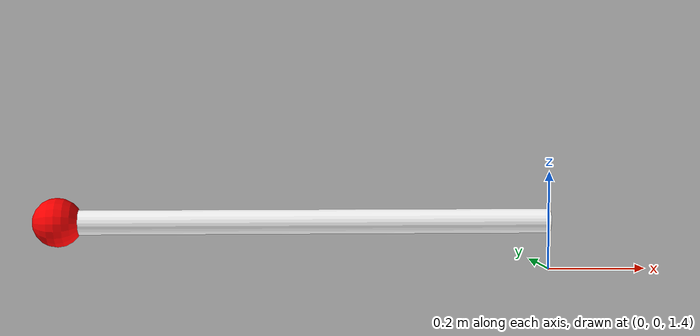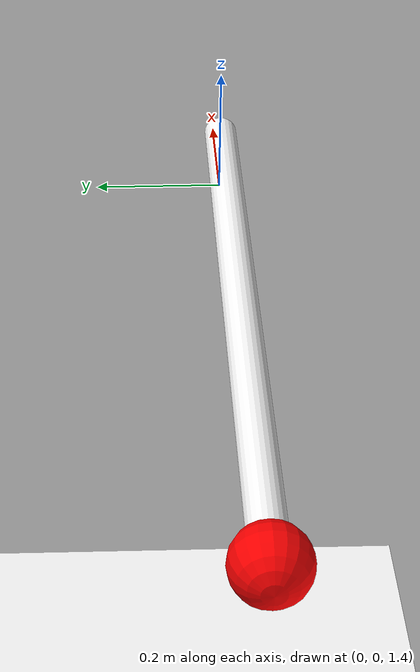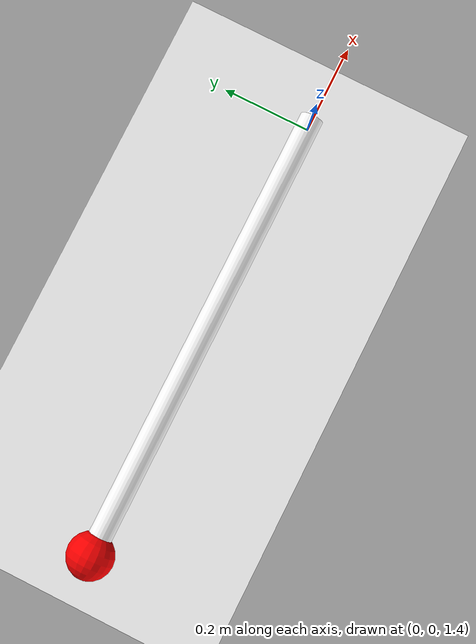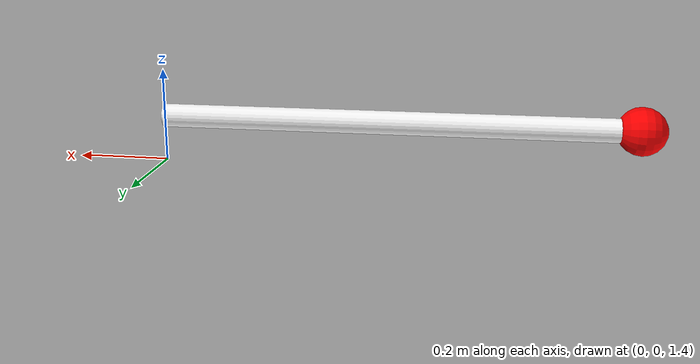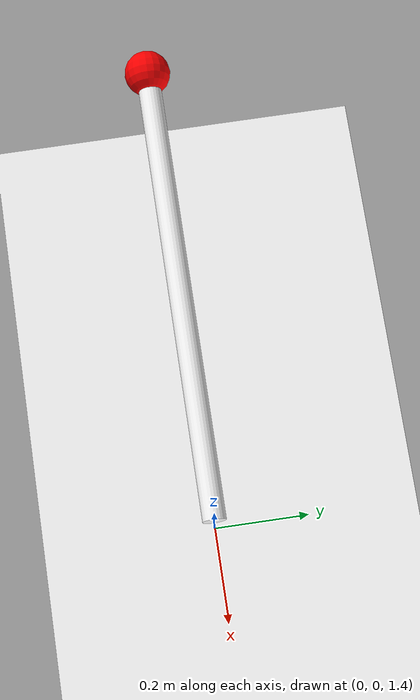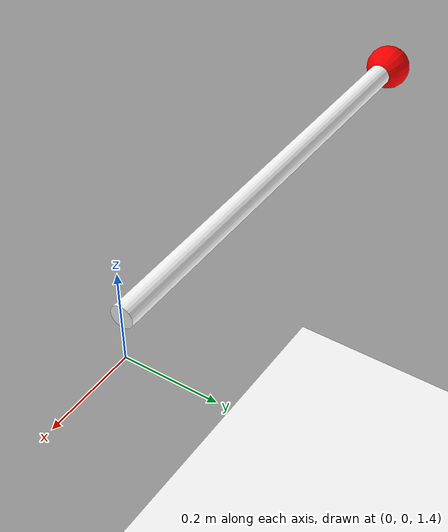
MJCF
<mujoco>
    <option gravity = "0 0 -9.81">
        <flag contact="enable" />
    </option >
    <worldbody>
        <light diffuse="0 0 0" pos="0 0 10" dir="0 0 -1" />
        <geom type="plane" size="2 2 0.01" rgba="1 1 1 1" />
        <body pos="-0.5 0 1.5" euler="0 90 0">
            <joint name="joint0" type="hinge" axis = "0 1 0" pos = "0 0 0.5" />
            <geom type="cylinder" size="0.025 0.5" euler="0 0 0" mass = "1" rgba="1 1 1 1" />
            <geom type="sphere" pos = "0 0 -0.5" mass = "0" size="0.05" rgba="1 0 0 1" />
        </body>
    </worldbody>
    <actuator>
        <motor name="torque" joint="joint0" gear="1" ctrllimited="true" ctrlrange="-10 10"/>
    </actuator>
</mujoco>
